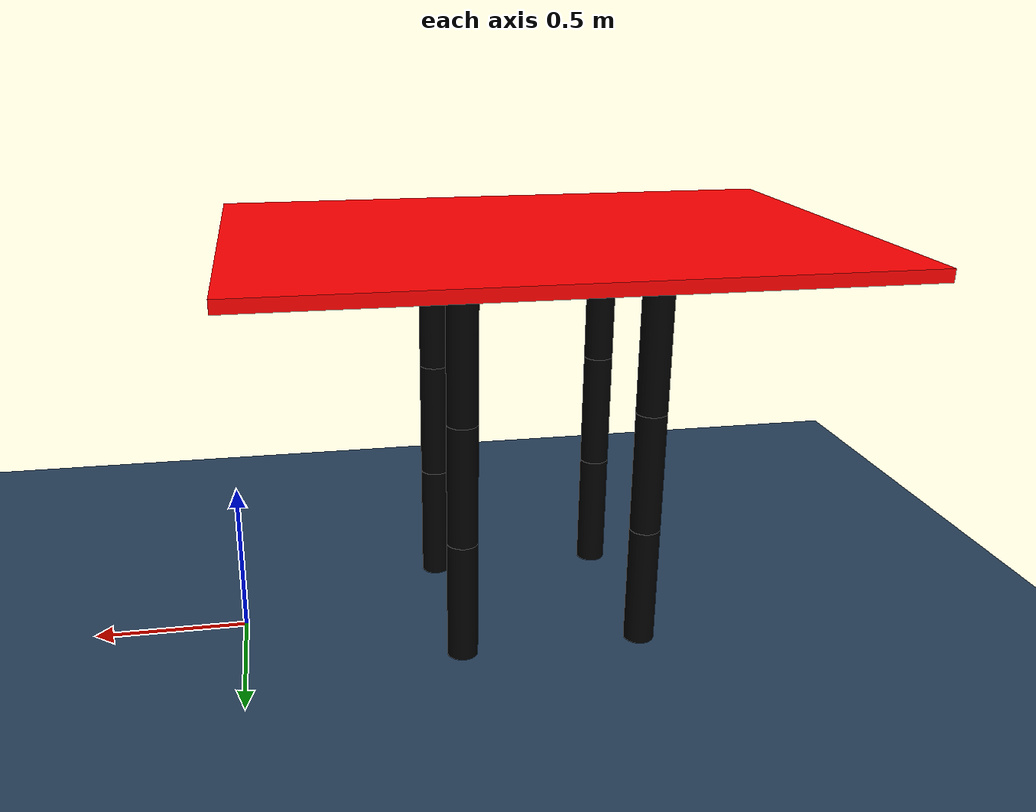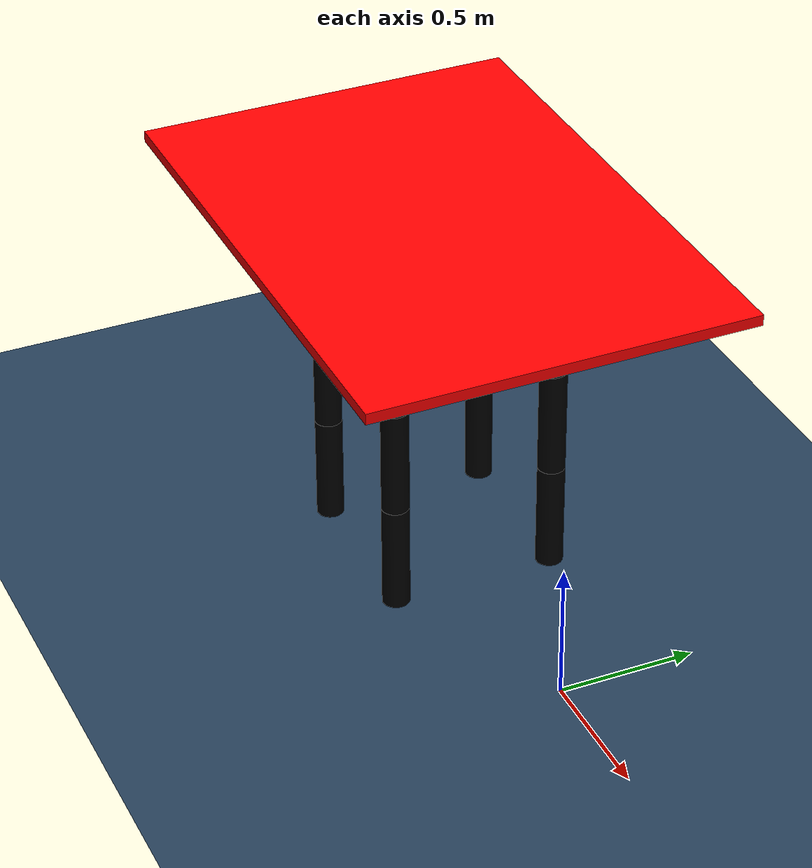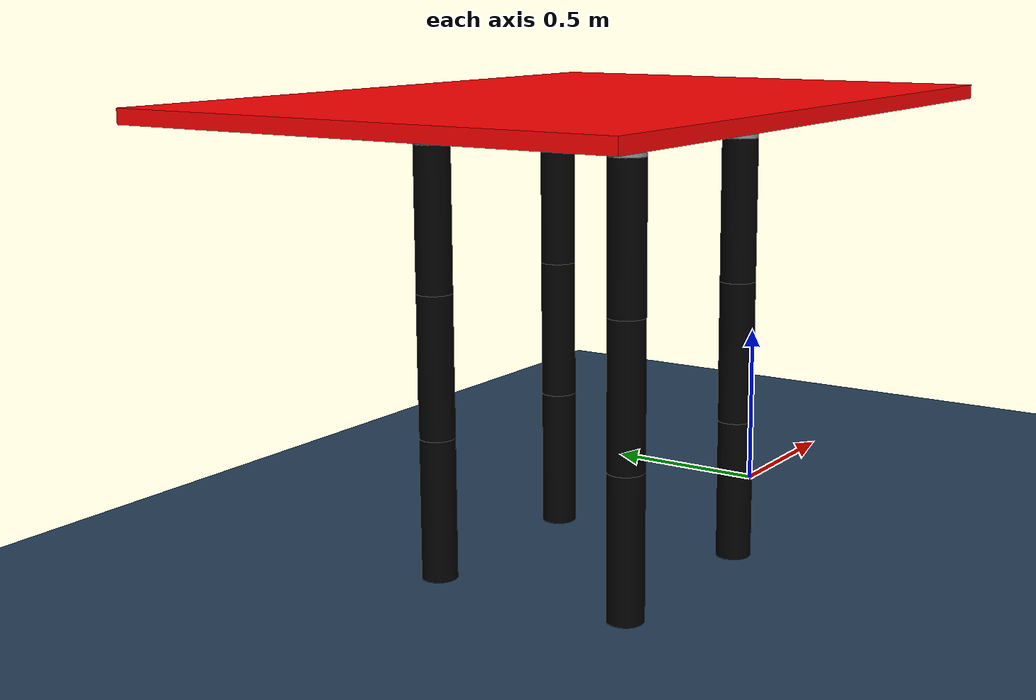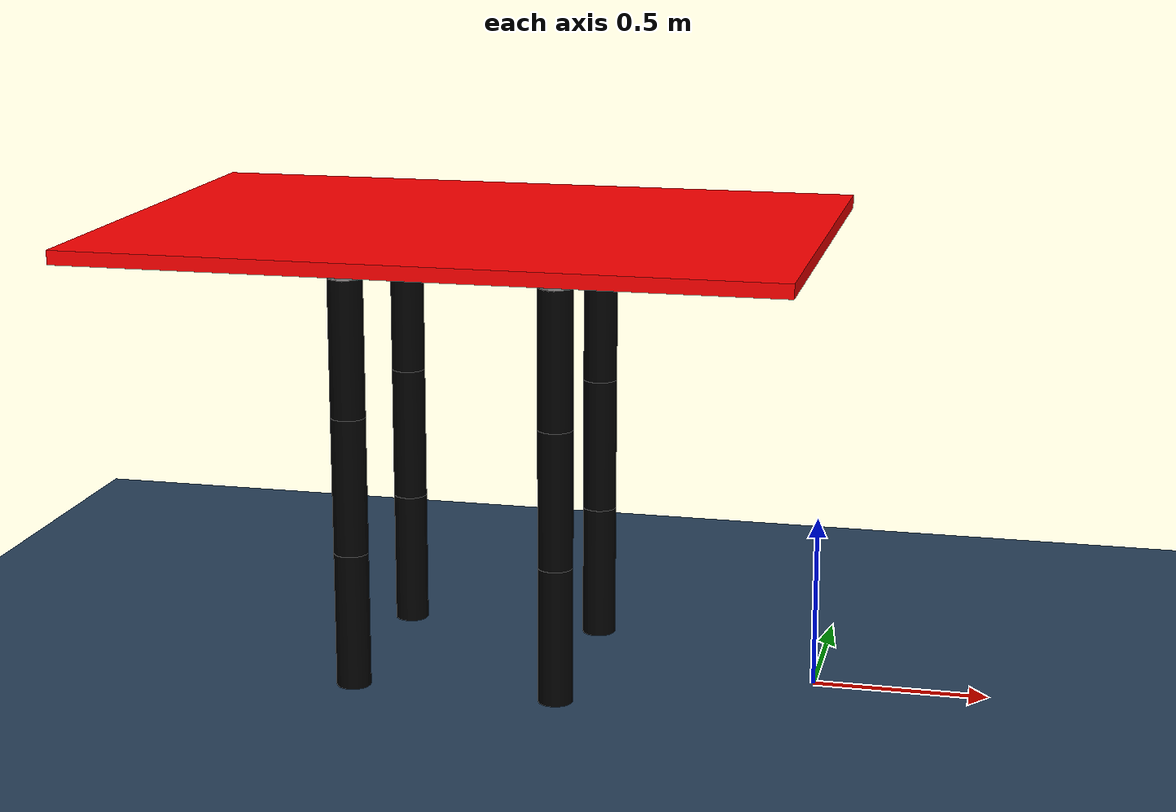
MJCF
<mujoco model="left_allegro_hand scene">
  <include file="multi_robot.xml"/>
  <statistic center="0 0 0" extent="4"/>
  <option timestep="0.005" gravity="0 0 -9.81" /> <!-- 중력 설정 추가 -->

  <visual>
    <rgba haze="0.15 0.25 0.35 1"/>
    <quality shadowsize="8192"/>
  </visual>

  <asset>
    <texture type="skybox" builtin="gradient" rgb1="0.3 0.5 0.7" rgb2="0 0 0" width="512" height="3072"/>
    <texture type="2d" name="groundplane" builtin="checker" mark="edge" rgb1="0.2 0.3 0.4" rgb2="0.1 0.2 0.3"
      markrgb="0.8 0.8 0.8" width="300" height="300"/>
    <material name="groundplane" texture="groundplane" texuniform="true" texrepeat="5 5" reflectance="0.2"/>
  </asset>

  <worldbody>
    <light pos="0 0 1"/>
    <light pos="0.3 0 1.5" dir="0 0 -1" directional="true"/>
    <geom name="floor" pos="0 0 0" size="0 0 0.05" type="plane" material="groundplane"/>
     <!-- 상자 객체 -->
    <body name="box" pos="-1 0 1.3" >
        <freejoint/>
        <geom name="box_geom" type="box" size="1 0.7 0.02" rgba="1 0 0 1" condim="6" priority="1" friction="0.1 0.5 0.1" mass="100"/>
    </body>
  </worldbody>
  <contact>
    <!-- 로봇 팔의 엔드 이펙터와 박스 간의 접촉 설정 -->
    <pair geom1="robot1_ee_geom" geom2="box_geom" condim="6" friction="0.1 0.5 0.1"  solimp="0.9 0.95 0.001" solref="0.02 1"/>
    <pair geom1="robot2_ee_geom" geom2="box_geom" condim="6" friction="0.1 0.5 0.1"  solimp="0.9 0.95 0.001" solref="0.02 1"/>
    <pair geom1="robot3_ee_geom" geom2="box_geom" condim="6" friction="0.1 0.5 0.1"  solimp="0.9 0.95 0.001" solref="0.02 1"/>
    <pair geom1="robot4_ee_geom" geom2="box_geom" condim="6" friction="0.1 0.5 0.1"  solimp="0.9 0.95 0.001" solref="0.02 1"/>

    <pair geom1="touch_geom1" geom2="box_geom" condim="6" friction="0.1 0.5 0.1"  solimp="0.9 0.95 0.001" solref="0.02 1"/>
    <pair geom1="touch_geom2" geom2="box_geom" condim="6" friction="0.1 0.5 0.1"  solimp="0.9 0.95 0.001" solref="0.02 1"/>
    <pair geom1="touch_geom3" geom2="box_geom" condim="6" friction="0.1 0.5 0.1"  solimp="0.9 0.95 0.001" solref="0.02 1"/>
    <pair geom1="touch_geom4" geom2="box_geom" condim="6" friction="0.1 0.5 0.1"  solimp="0.9 0.95 0.001" solref="0.02 1"/>

    <pair geom1="robot1_link3_geom" geom2="box_geom" condim="6" friction="0.1 0.5 0.1"  solimp="0.9 0.95 0.001" solref="0.02 1"/>
    <pair geom1="robot2_link3_geom" geom2="box_geom" condim="6" friction="0.1 0.5 0.1"  solimp="0.9 0.95 0.001" solref="0.02 1"/>
    <pair geom1="robot3_link3_geom" geom2="box_geom" condim="6" friction="0.1 0.5 0.1"  solimp="0.9 0.95 0.001" solref="0.02 1"/>
    <pair geom1="robot4_link3_geom" geom2="box_geom" condim="6" friction="0.1 0.5 0.1"  solimp="0.9 0.95 0.001" solref="0.02 1"/>
    <!-- 필요한 만큼 추가 -->
<!--        &lt;!&ndash; 접촉 파라미터 &ndash;&gt;-->
  </contact>
</mujoco>

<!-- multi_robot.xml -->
<mujoco model="custom_environment">
    <compiler angle="radian" meshdir="assets"/>
    <option cone="elliptic" impratio="10" iterations="50" tolerance="1e-6" solver="Newton"/>
    <asset>
        <!-- 추가적인 자산 (예: 메쉬 파일, 텍스처 등)을 여기 추가할 수 있습니다 -->
    </asset>

    <default>
        <default class="robot_geom">
            <geom type="cylinder" size="0.05 0.2" pos="0 0 0.2" rgba="0 0 0 1" contype="1" conaffinity="1"/>
        </default>
        <default class="guide_geom">
            <geom type="cylinder" size="0.025 0.5" pos="0 0 0.4"/>
        </default>
      <default class="vertical_joint">
            <joint type="slide" axis="0 0 1" pos="0 0 0" range="0 3" armature="0.01" stiffness="5000" damping="10000"/>
        </default>

    </default>

    <worldbody>
        <!-- 로봇 1 -->
        <body name="robot1" pos="-0.7 0.3 0.0" quat="-0.3827 0 0 0.9239">
            <body name="robot1_link1" pos="0 0 0">
                <joint name="robot1_vertical_joint" class="vertical_joint" damping="100000"/>
                <geom name="robot1_link1_geom" class="robot_geom"/>
                <body name="robot1_link2" pos="0 0 0.4">
                    <joint name="robot1_vertical_joint2" class="vertical_joint"/>
                    <geom name="robot1_link2_geom" class="robot_geom" />
                    <body name="robot1_link3" pos="0 0 0.4">
                        <joint name="robot1_vertical_joint3" class="vertical_joint"/>
                        <geom name="robot1_link3_geom" class="robot_geom" />
                        <body name="robot1_end_effector" pos="0 0 0.4">
                            <geom name="robot1_ee_geom" type="sphere" size="0.05" pos="0 0 0"/>
                            <site name="ee_touch_site1" type="sphere" pos="0 0 0" size="0.05" rgba="0 0 0 1"/>
                            <geom name="touch_geom1" type="sphere" size="0.05" pos="0 0 0" rgba="1 0 0 1" contype="1" conaffinity="1"/>
                        </body>
                    </body>
                    <body name="robot1_guide2" pos="0 0 0">
                        <geom name="robot1_guide2_geom" class="guide_geom"/>
                    </body>
                </body>
                <body name="robot1_guide" pos="0 0 0">
                    <geom name="robot1_guide_geom" class="guide_geom"/>
                </body>
            </body>
        </body>
                <!-- 로봇 2 -->
        <body name="robot2" pos="-1.3 0.3 0.0" quat="-0.9239 0 0 0.3827">
            <body name="robot2_link1" pos="0 0 0">
                <joint name="robot2_vertical_joint" class="vertical_joint" damping="100000"/>
                <geom name="robot2_link1_geom" class="robot_geom"/>
                <body name="robot2_link2" pos="0 0 0.4">
                    <joint name="robot2_vertical_joint2" class="vertical_joint"/>
                    <geom name="robot2_link2_geom" class="robot_geom"  />
                    <body name="robot2_link3" pos="0 0 0.4">
                        <joint name="robot2_vertical_joint3" class="vertical_joint"/>
                        <geom name="robot2_link3_geom" class="robot_geom" />
                        <body name="robot2_end_effector" pos="0 0 0.4">
                            <geom name="robot2_ee_geom" type="sphere" size="0.05" pos="0 0 0"/>
                            <site name="ee_touch_site2" type="sphere" pos="0 0 0" size="0.05" rgba="0 0 0 1"/>
                            <geom name="touch_geom2" type="sphere" size="0.05" pos="0 0 0" rgba="1 0 0 1" contype="1" conaffinity="1"/>
                        </body>
                    </body>
                    <body name="robot2_guide2" pos="0 0 0">
                        <geom name="robot2_guide2_geom" class="guide_geom"/>
                    </body>
                </body>
                <body name="robot2_guide" pos="0 0 0">
                    <geom name="robot2_guide_geom" class="guide_geom"/>
                </body>
            </body>
        </body>
                <!-- 로봇 3 -->
        <body name="robot3" pos="-0.7 -0.3 0" quat="0.3827 0 0 0.9239">
            <body name="robot3_link1" pos="0 0 0">
                <joint name="robot3_vertical_joint" class="vertical_joint" damping="100000"/>
                <geom name="robot3_link1_geom" class="robot_geom"/>
                <body name="robot3_link2" pos="0 0 0.4">
                    <joint name="robot3_vertical_joint2" class="vertical_joint"/>
                    <geom name="robot3_link2_geom" class="robot_geom"  />
                    <body name="robot3_link3" pos="0 0 0.4">
                        <joint name="robot3_vertical_joint3" class="vertical_joint"/>
                        <geom name="robot3_link3_geom" class="robot_geom"/>
                        <body name="robot3_end_effector" pos="0 0 0.4">
                            <geom name="robot3_ee_geom" type="sphere" size="0.05" pos="0 0 0"/>
                            <site name="ee_touch_site3" type="sphere" pos="0 0 0" size="0.05" rgba="0 0 0 1"/>
                            <geom name="touch_geom3" type="sphere" size="0.05" pos="0 0 0" rgba="1 0 0 1" contype="1" conaffinity="1"/>
                        </body>
                    </body>
                    <body name="robot3_guide2" pos="0 0 0">
                        <geom name="robot3_guide2_geom" class="guide_geom"/>
                    </body>
                </body>
                <body name="robot3_guide" pos="0 0 0">
                    <geom name="robot3_guide_geom" class="guide_geom"/>
                </body>
            </body>
        </body>
                <!-- 로봇 4 -->
        <body name="robot4" pos="-1.3 -0.3 0" quat="0.9239 0 0 0.3827">
            <body name="robot4_link1" pos="0 0 0">
                <joint name="robot4_vertical_joint" class="vertical_joint" damping="100000"/>
                <geom name="robot4_link1_geom" class="robot_geom"/>
                <body name="robot4_link2" pos="0 0 0.4">
                    <joint name="robot4_vertical_joint2" class="vertical_joint"/>
                    <geom name="robot4_link2_geom" class="robot_geom" />
                    <body name="robot4_link3" pos="0 0 0.4">
                        <joint name="robot4_vertical_joint3" class="vertical_joint"/>
                        <geom name="robot4_link3_geom" class="robot_geom"/>
                        <body name="robot4_end_effector" pos="0 0 0.4">
                            <geom name="robot4_ee_geom" type="sphere" size="0.05" pos="0 0 0"/>
                            <site name="ee_touch_site4" type="sphere" pos="0 0 0" size="0.05" rgba="0 0 0 1"/>
                            <geom name="touch_geom4" type="sphere" size="0.05" pos="0 0 0" rgba="1 0 0 1" contype="1" conaffinity="1"/>
                        </body>
                    </body>
                    <body name="robot4_guide2" pos="0 0 0">
                        <geom name="robot4_guide2_geom" class="guide_geom"/>
                    </body>
                </body>
                <body name="robot4_guide" pos="0 0 0">
                    <geom name="robot4_guide_geom" class="guide_geom"/>
                </body>
            </body>
        </body>
    </worldbody>

    <actuator>
        <!-- 로봇 1 액추에이터 -->
        <position joint="robot1_vertical_joint" name="1_actuator_joint" kp="2000" />
        <position joint="robot1_vertical_joint2" name="1_actuator_joint2" kp="10000"/>
        <position joint="robot1_vertical_joint3" name="1_actuator_joint3" kp="10000"/>
         <!-- 로봇 2 액추에이터 -->
        <position joint="robot2_vertical_joint" name="2_actuator_joint" kp="2000"/>
        <position joint="robot2_vertical_joint2" name="2_actuator_joint2" kp="10000"/>
        <position joint="robot2_vertical_joint3" name="2_actuator_joint3" kp="10000"/>
         <!-- 로봇 2 액추에이터 -->
        <position joint="robot3_vertical_joint" name="3_actuator_joint" kp="2000"/>
        <position joint="robot3_vertical_joint2" name="3_actuator_joint2" kp="10000"/>
        <position joint="robot3_vertical_joint3" name="3_actuator_joint3" kp="10000"/>
         <!-- 로봇 2 액추에이터 -->
        <position joint="robot4_vertical_joint" name="4_actuator_joint" kp="2000"/>
        <position joint="robot4_vertical_joint2" name="4_actuator_joint2" kp="10000"/>
        <position joint="robot4_vertical_joint3" name="4_actuator_joint3" kp="10000"/>

    </actuator>

    <sensor>
        <!-- 터치 센서 -->
        <touch name="touch_sensor1" site="ee_touch_site1"/>
        <touch name="touch_sensor2" site="ee_touch_site2"/>
        <touch name="touch_sensor3" site="ee_touch_site3"/>
        <touch name="touch_sensor4" site="ee_touch_site4"/>

    </sensor>

    <contact>
        <!-- 로봇 1 충돌 쌍 -->
        <pair geom1="robot1_link1_geom" geom2="robot1_link2_geom"/>
        <pair geom1="robot1_link2_geom" geom2="robot1_link3_geom"/>
        <!-- 로봇 2 충돌 쌍 -->
        <pair geom1="robot2_link1_geom" geom2="robot2_link2_geom"/>
        <pair geom1="robot2_link2_geom" geom2="robot2_link3_geom"/>
        <!-- 로봇 3 충돌 쌍 -->
        <pair geom1="robot3_link1_geom" geom2="robot3_link2_geom"/>
        <pair geom1="robot3_link2_geom" geom2="robot3_link3_geom"/>
        <!-- 로봇 4 충돌 쌍 -->
        <pair geom1="robot4_link1_geom" geom2="robot4_link2_geom"/>
        <pair geom1="robot4_link2_geom" geom2="robot4_link3_geom"/>

    </contact>

</mujoco>
